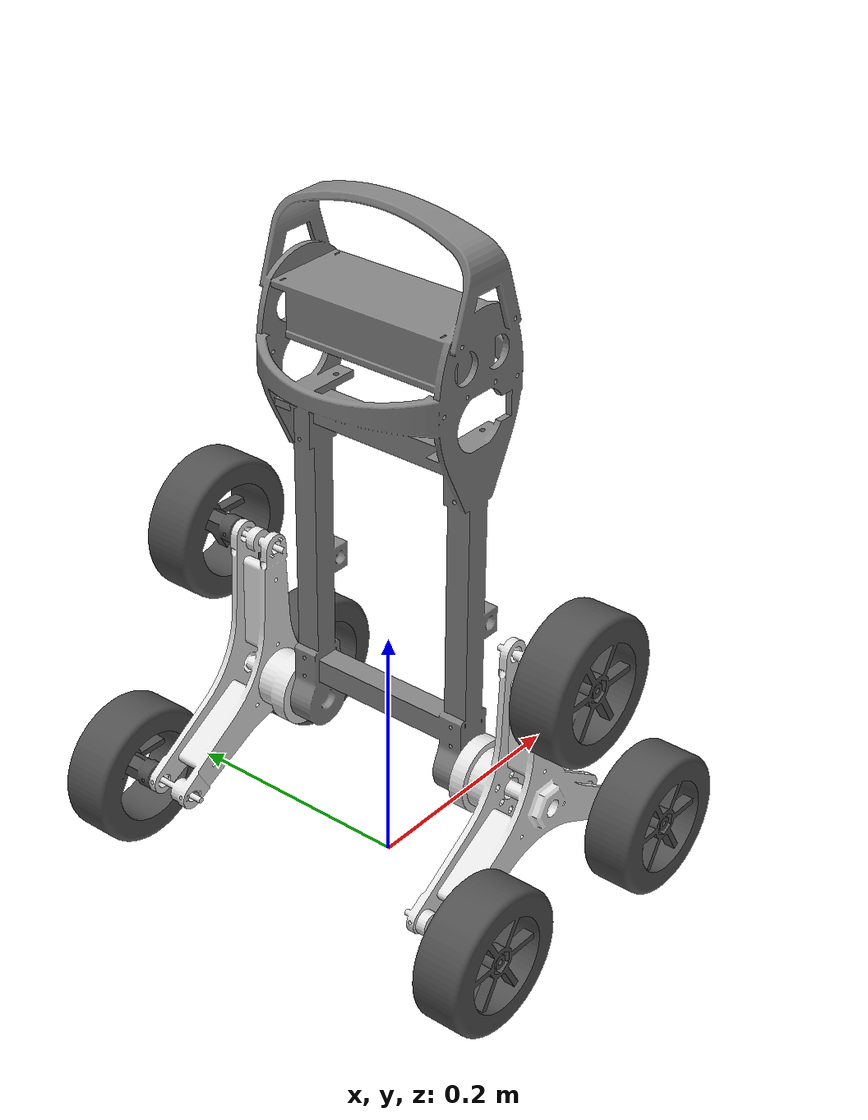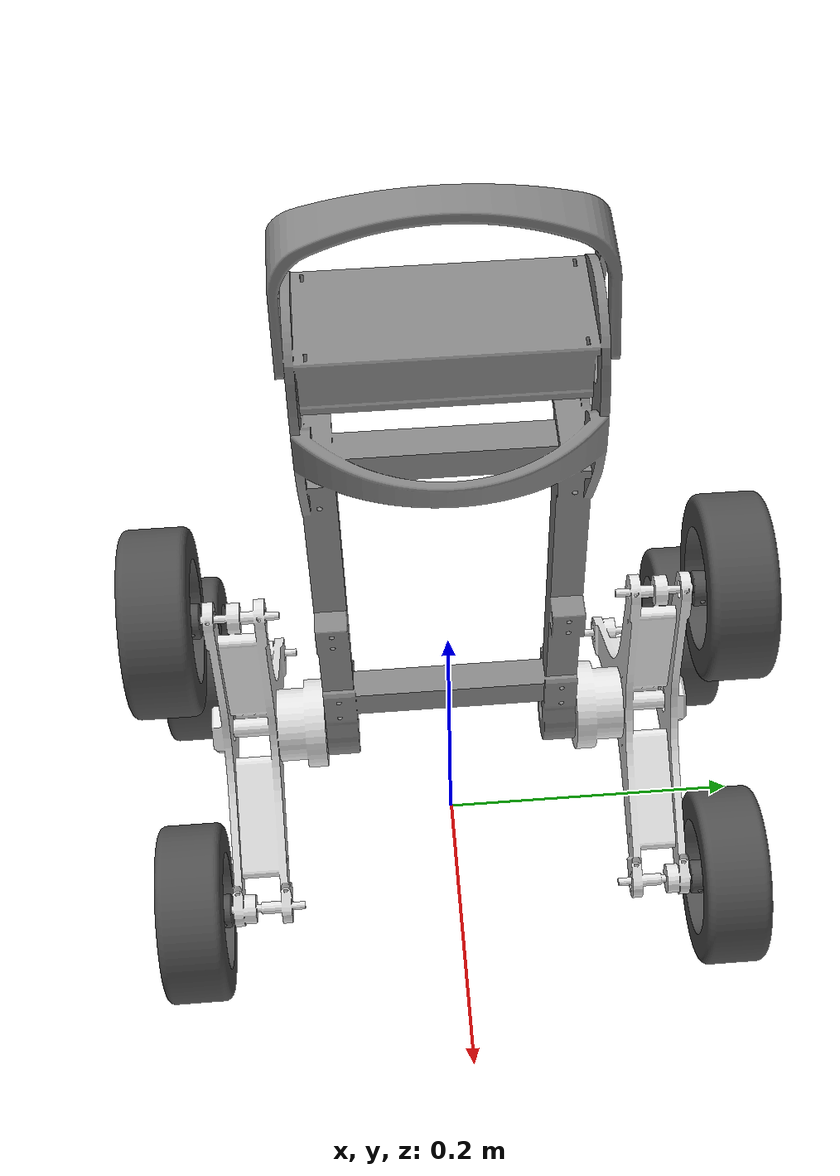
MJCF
<mujoco model="tribot">
  <compiler meshdir="../meshes/" angle="radian"/>

  <option timestep="0.002" gravity="0 0 -9.81" integrator="Euler">
    <flag warmstart="enable"/>
  </option>

  <visual>
    <headlight ambient="0.3 0.3 0.3" diffuse="0.5 0.5 0.5" specular="0.1 0.1 0.1"/>
  </visual>

  <!-- ================================================================
       Default classes
       ================================================================ -->
  <default>
    <joint damping="0" armature="0"/>
    <geom condim="3" margin="0.001"/>

    <default class="wheel_collision">
      <geom type="sphere" friction="0.7 0.005 0.001" condim="4"
            rgba="0 0 0 0" group="2"/>
    </default>

    <default class="visual">
      <geom contype="0" conaffinity="0" group="1"/>
    </default>

    <default class="body_collision">
      <geom friction="0.4 0.005 0.001" condim="3"/>
    </default>

    <default class="triplet_collision">
      <geom friction="0.3 0.005 0.001" condim="3"/>
    </default>
  </default>

  <!-- ================================================================
       Mesh assets
       ================================================================ -->
  <asset>
    <mesh name="c_body" file="c_body.stl"/>
    <mesh name="l_triplet" file="l_triplet.stl"/>
    <mesh name="l_wheel" file="l_wheel.stl"/>
    <mesh name="r_triplet" file="r_triplet.stl"/>
    <mesh name="r_wheel" file="r_wheel.stl"/>
  </asset>

  <worldbody>

    <body name="c_body" pos="0 0 0.118">
      <freejoint name="root"/>
      <inertial pos="0 0 0.247" mass="2.716678"
                fullinertia="0.057035 0.056436 0.014235 0 0 0"/>
      <geom class="visual" type="mesh" mesh="c_body"
            rgba="0.518 0.518 0.518 1"/>
      <geom class="body_collision" type="mesh" mesh="c_body"/>

      <!-- ============================================================
           Left triplet hub
           ============================================================ -->
      <body name="l_triplet" pos="0 -0.0825 0">
        <joint name="c_body_to_l_triplet" type="hinge" axis="0 1 0"
               damping="0.05"/>
        <inertial pos="0 0 0" mass="0.253511"
                  fullinertia="0.001079 0.002097 0.001341 0 0 0"/>
        <geom class="visual" type="mesh" mesh="l_triplet"
              rgba="0.898 0.898 0.898 1"/>
        <geom class="triplet_collision" type="mesh" mesh="l_triplet"/>

        <!-- L wheel 1 (top, pos=0 -0.07 0.12) -->
        <body name="l_wheel_1" pos="0 -0.07 0.12">
          <joint name="l_triplet_to_l_wheel_1" type="hinge" axis="0 1 0"/>
          <inertial pos="0 0 0" mass="0.027132"
                    fullinertia="0.00004 0.000068 0.00004 0 0 0"/>
          <geom class="visual" type="mesh" mesh="l_wheel"
                rgba="0.314 0.314 0.314 1"/>
          <geom class="wheel_collision" size="0.058"/>
        </body>

        <!-- L wheel 2 (bottom-left, pos=-0.10414 -0.07 -0.060125) -->
        <body name="l_wheel_2" pos="-0.10414 -0.07 -0.060125">
          <joint name="l_triplet_to_l_wheel_2" type="hinge" axis="0 1 0"/>
          <inertial pos="0 0 0" mass="0.027132"
                    fullinertia="0.00004 0.000068 0.00004 0 0 0"/>
          <geom class="visual" type="mesh" mesh="l_wheel"
                rgba="0.314 0.314 0.314 1"/>
          <geom class="wheel_collision" size="0.058"/>
        </body>

        <!-- L wheel 3 (bottom-right, pos=0.10414 -0.07 -0.060125) -->
        <body name="l_wheel_3" pos="0.10414 -0.07 -0.060125">
          <joint name="l_triplet_to_l_wheel_3" type="hinge" axis="0 1 0"/>
          <inertial pos="0 0 0" mass="0.027132"
                    fullinertia="0.00004 0.000068 0.00004 0 0 0"/>
          <geom class="visual" type="mesh" mesh="l_wheel"
                rgba="0.314 0.314 0.314 1"/>
          <geom class="wheel_collision" size="0.058"/>
        </body>
      </body>

      <!-- ============================================================
           Right triplet hub
           ============================================================ -->
      <body name="r_triplet" pos="0 0.0825 0">
        <joint name="c_body_to_r_triplet" type="hinge" axis="0 1 0"
               damping="0.05"/>
        <inertial pos="0 0 0" mass="0.253511"
                  fullinertia="0.001079 0.002097 0.001341 0 0 0"/>
        <geom class="visual" type="mesh" mesh="r_triplet"
              rgba="0.898 0.898 0.898 1"/>
        <geom class="triplet_collision" type="mesh" mesh="r_triplet"/>

        <!-- R wheel 1 (top, pos=0 0.07 0.12) -->
        <body name="r_wheel_1" pos="0 0.07 0.12">
          <joint name="r_triplet_to_r_wheel_1" type="hinge" axis="0 1 0"/>
          <inertial pos="0 0 0" mass="0.027132"
                    fullinertia="0.00004 0.000068 0.00004 0 0 0"/>
          <geom class="visual" type="mesh" mesh="r_wheel"
                rgba="0.314 0.314 0.314 1"/>
          <geom class="wheel_collision" size="0.058"/>
        </body>

        <!-- R wheel 2 (bottom-left, pos=-0.10414 0.07 -0.060125) -->
        <body name="r_wheel_2" pos="-0.10414 0.07 -0.060125">
          <joint name="r_triplet_to_r_wheel_2" type="hinge" axis="0 1 0"/>
          <inertial pos="0 0 0" mass="0.027132"
                    fullinertia="0.00004 0.000068 0.00004 0 0 0"/>
          <geom class="visual" type="mesh" mesh="r_wheel"
                rgba="0.314 0.314 0.314 1"/>
          <geom class="wheel_collision" size="0.058"/>
        </body>

        <!-- R wheel 3 (bottom-right, pos=0.10414 0.07 -0.060125) -->
        <body name="r_wheel_3" pos="0.10414 0.07 -0.060125">
          <joint name="r_triplet_to_r_wheel_3" type="hinge" axis="0 1 0"/>
          <inertial pos="0 0 0" mass="0.027132"
                    fullinertia="0.00004 0.000068 0.00004 0 0 0"/>
          <geom class="visual" type="mesh" mesh="r_wheel"
                rgba="0.314 0.314 0.314 1"/>
          <geom class="wheel_collision" size="0.058"/>
        </body>
      </body>

    </body>
  </worldbody>

  <equality>
    <!-- Left side: wheel_1 is master -->
    <joint joint1="l_triplet_to_l_wheel_1" joint2="l_triplet_to_l_wheel_2"
           polycoef="0 1 0 0 0"/>
    <joint joint1="l_triplet_to_l_wheel_1" joint2="l_triplet_to_l_wheel_3"
           polycoef="0 1 0 0 0"/>
    <!-- Right side: wheel_1 is master -->
    <joint joint1="r_triplet_to_r_wheel_1" joint2="r_triplet_to_r_wheel_2"
           polycoef="0 1 0 0 0"/>
    <joint joint1="r_triplet_to_r_wheel_1" joint2="r_triplet_to_r_wheel_3"
           polycoef="0 1 0 0 0"/>
  </equality>

  <!-- ================================================================
       Actuators: direct torque control (motor type)
       ================================================================ -->
  <actuator>
    <!-- Triplet hub motors -->
    <motor name="motor_l_triplet" joint="c_body_to_l_triplet"
           ctrllimited="true" ctrlrange="-10 10"/>
    <motor name="motor_r_triplet" joint="c_body_to_r_triplet"
           ctrllimited="true" ctrlrange="-10 10"/>
    <!-- Left wheel motors -->
    <motor name="motor_l_wheel_1" joint="l_triplet_to_l_wheel_1"
           ctrllimited="true" ctrlrange="-2 2"/>
    <motor name="motor_l_wheel_2" joint="l_triplet_to_l_wheel_2"
           ctrllimited="true" ctrlrange="-2 2"/>
    <motor name="motor_l_wheel_3" joint="l_triplet_to_l_wheel_3"
           ctrllimited="true" ctrlrange="-2 2"/>
    <!-- Right wheel motors -->
    <motor name="motor_r_wheel_1" joint="r_triplet_to_r_wheel_1"
           ctrllimited="true" ctrlrange="-2 2"/>
    <motor name="motor_r_wheel_2" joint="r_triplet_to_r_wheel_2"
           ctrllimited="true" ctrlrange="-2 2"/>
    <motor name="motor_r_wheel_3" joint="r_triplet_to_r_wheel_3"
           ctrllimited="true" ctrlrange="-2 2"/>
  </actuator>

</mujoco>
